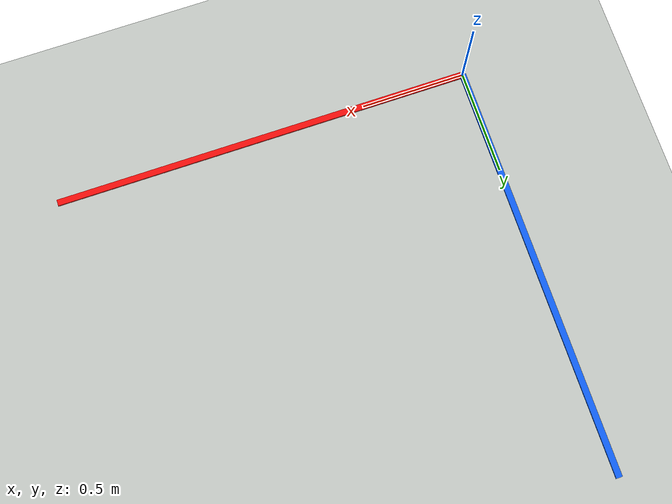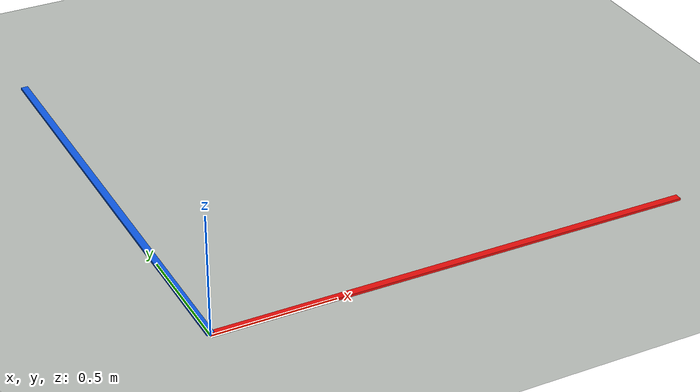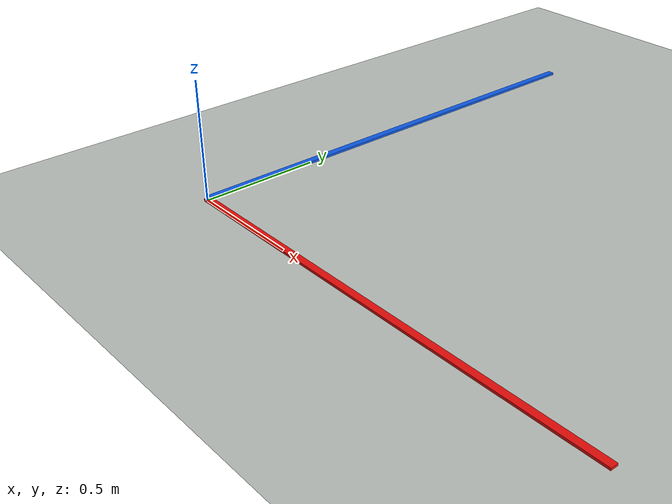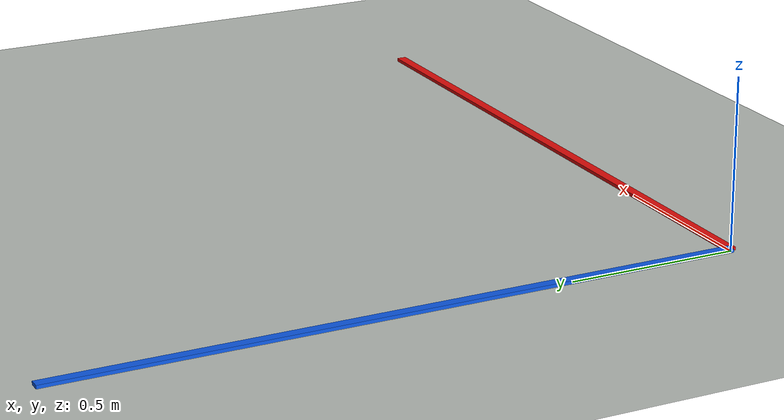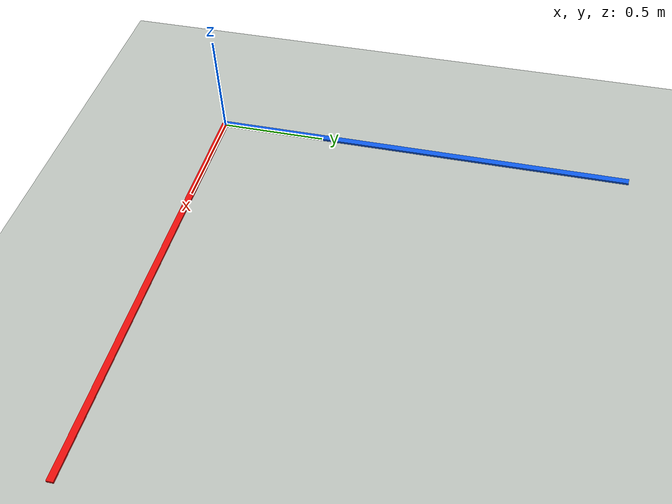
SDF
<?xml version="1.0"?>
<sdf version="1.6">
  <world name="raicom_intelligent_recon">
    <plugin filename="ignition-gazebo-physics-system"
            name="ignition::gazebo::systems::Physics"/>
    <plugin filename="ignition-gazebo-user-commands-system"
            name="ignition::gazebo::systems::UserCommands"/>
    <plugin filename="ignition-gazebo-sensors-system"
            name="ignition::gazebo::systems::Sensors">
      <render_engine>ogre2</render_engine>
    </plugin>
    <plugin filename="ignition-gazebo-scene-broadcaster-system"
            name="ignition::gazebo::systems::SceneBroadcaster"/>

    <gravity>0 0 -9.8</gravity>
    <atmosphere type="adiabatic"/>

    <physics name="default_physics" default="1" type="ode">
      <max_step_size>0.002</max_step_size>
      <real_time_factor>1.0</real_time_factor>
      <real_time_update_rate>500</real_time_update_rate>
    </physics>

    <scene>
      <ambient>0.72 0.72 0.72 1</ambient>
      <background>0.78 0.82 0.86 1</background>
      <shadows>false</shadows>
    </scene>

    <light name="sun" type="directional">
      <cast_shadows>false</cast_shadows>
      <pose>0 0 8 0 0 0</pose>
      <diffuse>0.9 0.9 0.9 1</diffuse>
      <specular>0.2 0.2 0.2 1</specular>
      <attenuation>
        <range>1000</range>
        <constant>0.9</constant>
        <linear>0.01</linear>
        <quadratic>0.001</quadratic>
      </attenuation>
      <direction>-0.45 0.15 -1</direction>
    </light>

    <model name="open_ground">
      <static>true</static>
      <link name="ground_link">
        <collision name="ground_collision">
          <geometry>
            <plane>
              <normal>0 0 1</normal>
              <size>12 12</size>
            </plane>
          </geometry>
          <surface>
            <friction>
              <ode>
                <mu>50</mu>
              </ode>
            </friction>
          </surface>
        </collision>
        <visual name="ground_visual">
          <geometry>
            <plane>
              <normal>0 0 1</normal>
              <size>12 12</size>
            </plane>
          </geometry>
          <material>
            <ambient>0.72 0.74 0.72 1</ambient>
            <diffuse>0.72 0.74 0.72 1</diffuse>
            <specular>0.1 0.1 0.1 1</specular>
          </material>
        </visual>
      </link>
    </model>

    <model name="x_axis_marker">
      <static>true</static>
      <pose>1.0 0 0.006 0 0 0</pose>
      <link name="link">
        <visual name="visual">
          <geometry><box><size>2.0 0.03 0.01</size></box></geometry>
          <material><diffuse>0.9 0.05 0.04 1</diffuse></material>
        </visual>
      </link>
    </model>

    <model name="y_axis_marker">
      <static>true</static>
      <pose>0 1.0 0.007 0 0 0</pose>
      <link name="link">
        <visual name="visual">
          <geometry><box><size>0.03 2.0 0.01</size></box></geometry>
          <material><diffuse>0.05 0.35 0.9 1</diffuse></material>
        </visual>
      </link>
    </model>

    <gui fullscreen="0">
      <camera name="overview_camera">
        <pose>1.8 -2.0 3.0 0 0.95 2.35</pose>
        <view_controller>orbit</view_controller>
        <projection_type>perspective</projection_type>
      </camera>
    </gui>
  </world>
</sdf>
